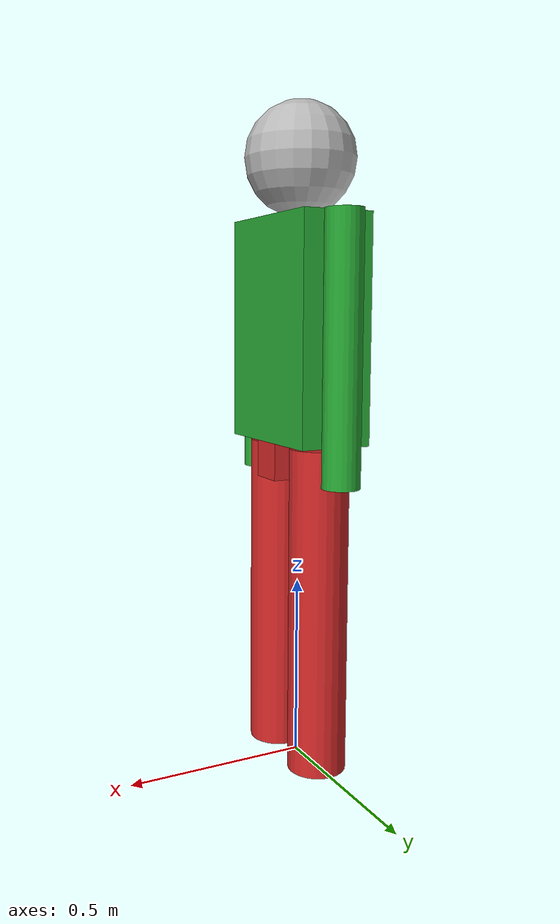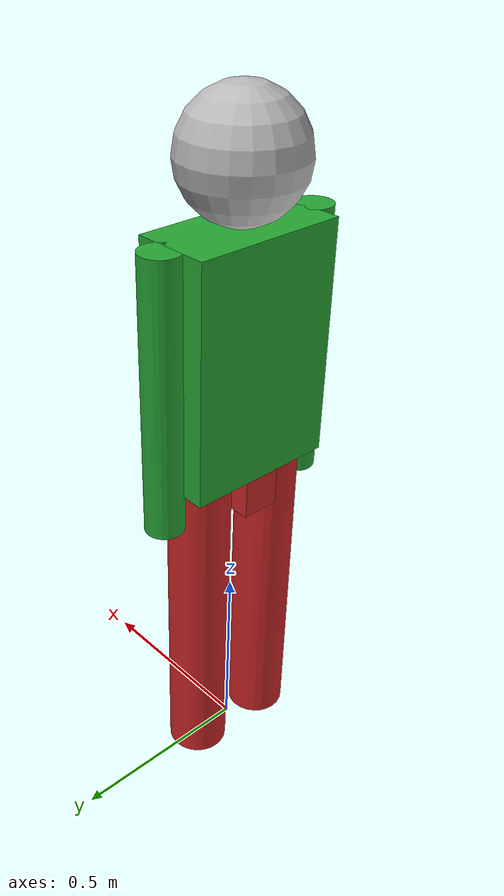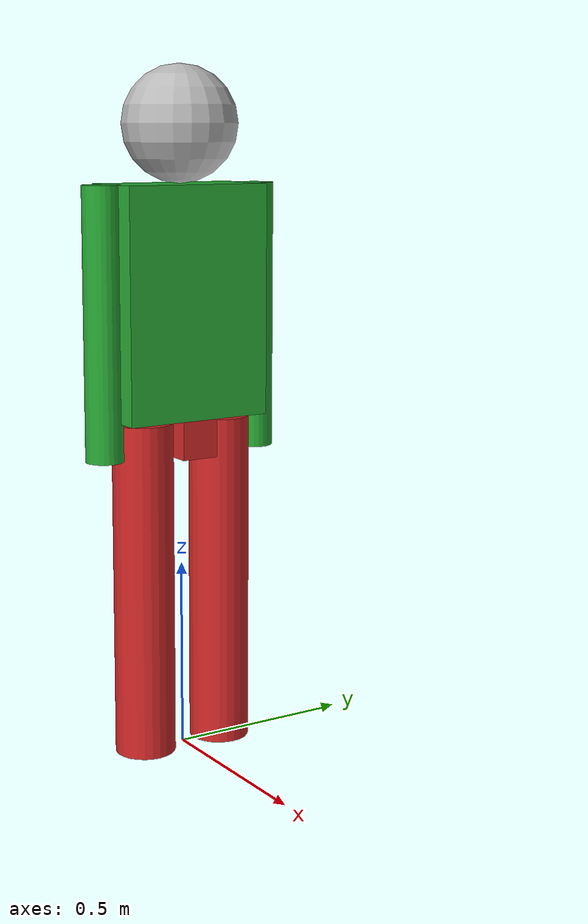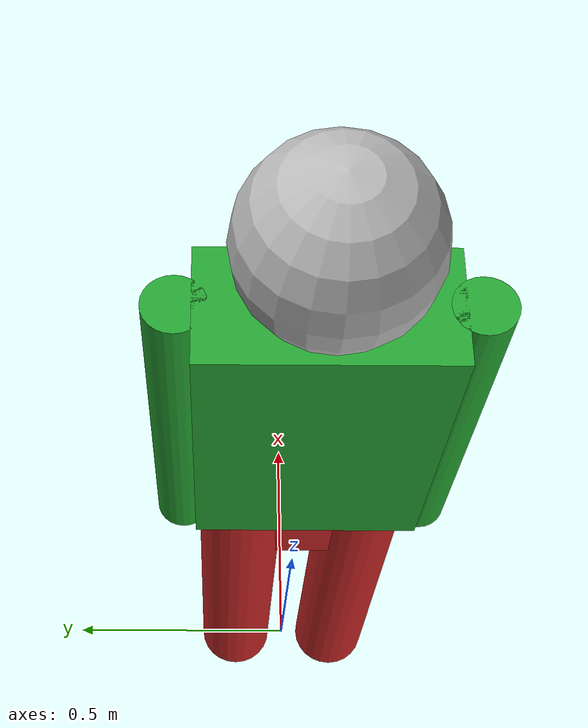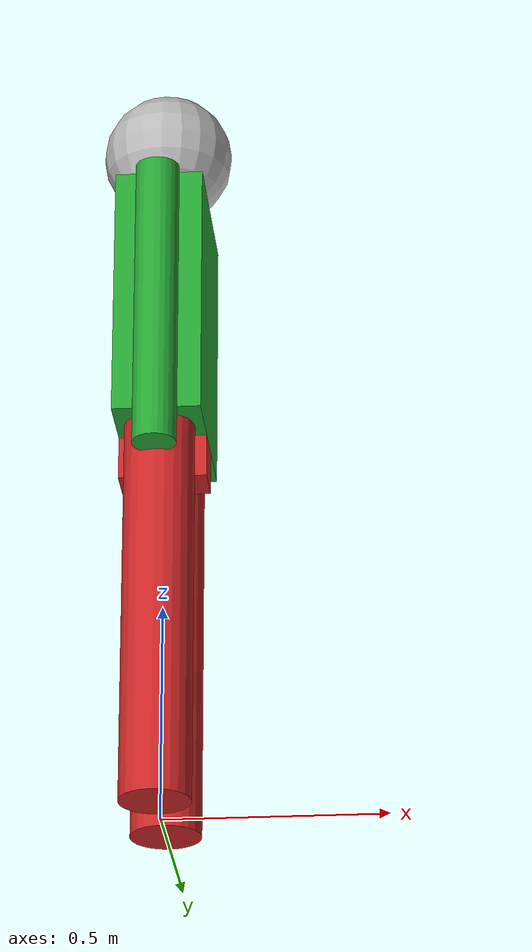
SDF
<?xml version='1.0'?>
<sdf version='1.4'>
  <model name="person">
    <static>false</static>
    <link name="person">
      <visual name="torso_top">
	<pose>0 0 1.2 0 0 0</pose>
	<geometry>
	  <box>
	    <size>0.2 0.4 0.6</size>
	  </box>
	</geometry>
	<material>
          <script>
            <uri>file://media/materials/scripts/gazebo.material</uri>
            <name>Gazebo/Green</name>
          </script>
        </material>
      </visual>
      <visual name="torso_bottom">
	<pose>0 0 0.85 0 0 0</pose>
	<geometry>
	  <box>
	    <size>0.2 0.1 0.1</size>
	  </box>
	</geometry>
	<material>
          <script>
            <uri>file://media/materials/scripts/gazebo.material</uri>
            <name>Gazebo/Red</name>
          </script>
        </material>
      </visual>
      <collision name="torso_top">
	<pose>0 0 1.2 0 0 0</pose>
	<geometry>
	  <box>
	    <size>0.2 0.4 0.6</size>
	  </box>
	</geometry>
      </collision>
      <collision name="torso_bottom">
	<pose>0 0 0.85 0 0 0</pose>
	<geometry>
	  <box>
	    <size>0.2 0.1 0.1</size>
	  </box>
	</geometry>
      </collision>

      <visual name="head">
	<pose>0 0 1.65 0 0 0</pose>
	<geometry>
	  <sphere>
	    <radius>0.15</radius>
	  </sphere>
	</geometry>
	<material>
          <script>
            <uri>file://media/materials/scripts/gazebo.material</uri>
	    <name>Gazebo/SmileyHappy</name>
          </script>
        </material>
      </visual>
      <collision name = "head">
	<pose>0 0 1.65 0 0 0</pose>
	<geometry>
	  <sphere>
	    <radius>0.15</radius>
	  </sphere>
	</geometry>
      </collision>

      <visual name="left_arm">
	<pose>0 0.225 1.15 0 0 0</pose>
	<geometry>
	  <cylinder>
	    <radius>0.05</radius>
	    <length>0.70</length>
	  </cylinder>
	</geometry>
	<material>
          <script>
            <uri>file://media/materials/scripts/gazebo.material</uri>
            <name>Gazebo/Green</name>
          </script>
        </material>
      </visual>
      <collision name="left_arm">
	<pose>0 0.225 1.15 0 0 0</pose>
	<geometry>
	  <cylinder>
	    <radius>0.05</radius>
	    <length>0.70</length>
	  </cylinder>
	</geometry>
      </collision>

      <visual name ="right_arm">
	<pose>0 -0.225 1.15 0 0 0</pose>
	<geometry>
	  <cylinder>
	    <radius>0.05</radius>
	    <length>0.70</length>
	  </cylinder>
	</geometry>
	<material>
          <script>
            <uri>file://media/materials/scripts/gazebo.material</uri>
            <name>Gazebo/Green</name>
          </script>
        </material>
      </visual>
      <collision name ="right_arm">
	<pose>0 -0.225 1.15 0 0 0</pose>
	<geometry>
	  <cylinder>
	    <radius>0.05</radius>
	    <length>0.70</length>
	  </cylinder>
	</geometry>
      </collision>

      <visual name ="left_leg">
	<pose>0 0.115 0.445 0 0 0</pose>
	<geometry>
	  <cylinder>
	    <radius>0.08</radius>
	    <length>0.89</length>
	  </cylinder>
	</geometry>
	<material>
          <script>
            <uri>file://media/materials/scripts/gazebo.material</uri>
            <name>Gazebo/Red</name>
          </script>
        </material>
      </visual>
      <collision name ="left_leg">
	<pose>0 0.115 0.445 0 0 0</pose>
	<geometry>
	  <cylinder>
	    <radius>0.08</radius>
	    <length>0.89</length>
	  </cylinder>
	</geometry>
      </collision>

      <visual name="right_leg">
	<pose>0 -0.115 0.445 0 0 0</pose>
	<geometry>
	  <cylinder>
	    <radius>0.08</radius>
	    <length>0.89</length>
	  </cylinder>
	</geometry>
	<material>
          <script>
            <uri>file://media/materials/scripts/gazebo.material</uri>
            <name>Gazebo/Red</name>
          </script>
        </material>
      </visual>
      <collision name="right_leg">
	<pose>0 -0.115 0.445 0 0 0</pose>
	<geometry>
	  <cylinder>
	    <radius>0.08</radius>
	    <length>0.89</length>
	  </cylinder>
	</geometry>
      </collision>
    </link>
  </model>
</sdf>
